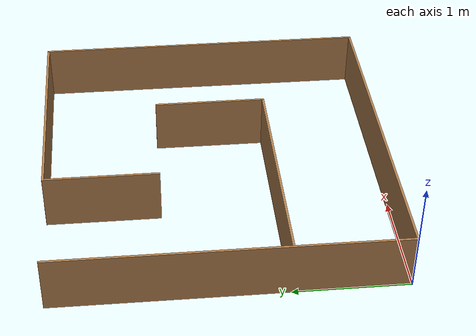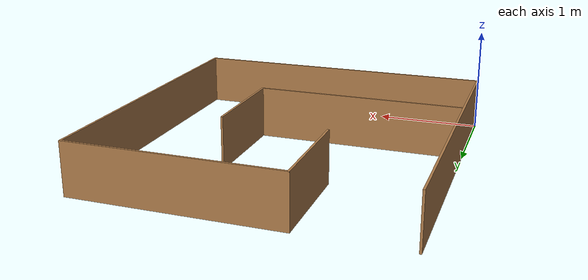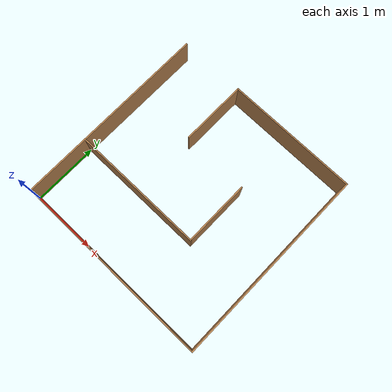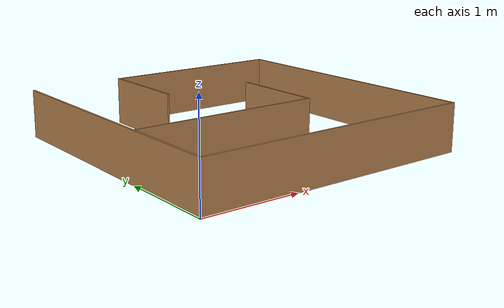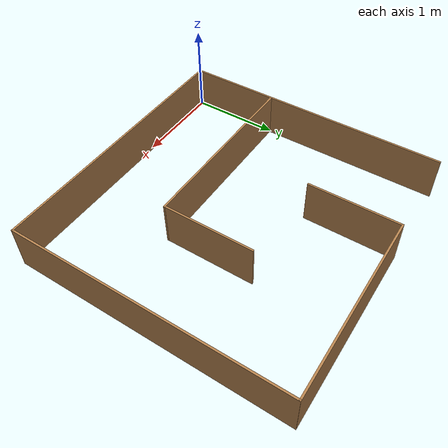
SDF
<?xml version='1.0'?>
<sdf version='1.6'>
  <model name='circuit_25.1'>
    <pose frame=''>1.49924 1.49756 0 0 -0 0</pose>
    <link name='Wall_12'>
      <collision name='Wall_12_Collision'>
        <geometry>
          <box>
            <size>3 0.02 0.5</size>
          </box>
        </geometry>
        <pose frame=''>0 0 0.25 0 -0 0</pose>
      </collision>
      <visual name='Wall_12_Visual'>
        <pose frame=''>0 0 0.25 0 -0 0</pose>
        <geometry>
          <box>
            <size>3 0.02 0.5</size>
          </box>
        </geometry>
        <material>
          <script>
            <uri>file://media/materials/scripts/gazebo.material</uri>
            <name>Gazebo/Wood</name>
          </script>
          <ambient>1 1 1 1</ambient>
        </material>
        <meta>
          <layer>0</layer>
        </meta>
      </visual>
      <pose frame=''>0 -1.49069 0 0 -0 0</pose>
    </link>
    <link name='Wall_14'>
      <collision name='Wall_14_Collision'>
        <geometry>
          <box>
            <size>3 0.02 0.5</size>
          </box>
        </geometry>
        <pose frame=''>0 0 0.25 0 -0 0</pose>
      </collision>
      <visual name='Wall_14_Visual'>
        <pose frame=''>0 0 0.25 0 -0 0</pose>
        <geometry>
          <box>
            <size>3 0.02 0.5</size>
          </box>
        </geometry>
        <material>
          <script>
            <uri>file://media/materials/scripts/gazebo.material</uri>
            <name>Gazebo/Wood</name>
          </script>
          <ambient>1 1 1 1</ambient>
        </material>
        <meta>
          <layer>0</layer>
        </meta>
      </visual>
      <pose frame=''>-1.4903 -0.000677 0 0 -0 1.5708</pose>
    </link>
    <link name='Wall_16'>
      <collision name='Wall_16_Collision'>
        <geometry>
          <box>
            <size>3 0.02 0.5</size>
          </box>
        </geometry>
        <pose frame=''>0 0 0.25 0 -0 0</pose>
      </collision>
      <visual name='Wall_16_Visual'>
        <pose frame=''>0 0 0.25 0 -0 0</pose>
        <geometry>
          <box>
            <size>3 0.02 0.5</size>
          </box>
        </geometry>
        <material>
          <script>
            <uri>file://media/materials/scripts/gazebo.material</uri>
            <name>Gazebo/Wood</name>
          </script>
          <ambient>1 1 1 1</ambient>
        </material>
        <meta>
          <layer>0</layer>
        </meta>
      </visual>
      <pose frame=''>1.4903 -0.000565 0 0 -0 1.5708</pose>
    </link>
    <link name='Wall_18'>
      <collision name='Wall_18_Collision'>
        <geometry>
          <box>
            <size>2 0.02 0.5</size>
          </box>
        </geometry>
        <pose frame=''>0 0 0.25 0 -0 0</pose>
      </collision>
      <visual name='Wall_18_Visual'>
        <pose frame=''>0 0 0.25 0 -0 0</pose>
        <geometry>
          <box>
            <size>2 0.02 0.5</size>
          </box>
        </geometry>
        <material>
          <script>
            <uri>file://media/materials/scripts/gazebo.material</uri>
            <name>Gazebo/Wood</name>
          </script>
          <ambient>1 1 1 1</ambient>
        </material>
        <meta>
          <layer>0</layer>
        </meta>
      </visual>
      <pose frame=''>0.500076 1.49069 0 0 -0 3.14159</pose>
    </link>
    <link name='Wall_20'>
      <collision name='Wall_20_Collision'>
        <geometry>
          <box>
            <size>2 0.02 0.5</size>
          </box>
        </geometry>
        <pose frame=''>0 0 0.25 0 -0 0</pose>
      </collision>
      <visual name='Wall_20_Visual'>
        <pose frame=''>0 0 0.25 0 -0 0</pose>
        <geometry>
          <box>
            <size>2 0.02 0.5</size>
          </box>
        </geometry>
        <material>
          <script>
            <uri>file://media/materials/scripts/gazebo.material</uri>
            <name>Gazebo/Wood</name>
          </script>
          <ambient>1 1 1 1</ambient>
        </material>
        <meta>
          <layer>0</layer>
        </meta>
      </visual>
      <pose frame=''>-0.483514 -0.500636 0 0 -0 0</pose>
    </link>
    <link name='Wall_22'>
      <collision name='Wall_22_Collision'>
        <geometry>
          <box>
            <size>1 0.02 0.5</size>
          </box>
        </geometry>
        <pose frame=''>0 0 0.25 0 -0 0</pose>
      </collision>
      <visual name='Wall_22_Visual'>
        <pose frame=''>0 0 0.25 0 -0 0</pose>
        <geometry>
          <box>
            <size>1 0.02 0.5</size>
          </box>
        </geometry>
        <material>
          <script>
            <uri>file://media/materials/scripts/gazebo.material</uri>
            <name>Gazebo/Wood</name>
          </script>
          <ambient>1 1 1 1</ambient>
        </material>
        <meta>
          <layer>0</layer>
        </meta>
      </visual>
      <pose frame=''>0.506232 -0.009744 0 0 -0 -1.5708</pose>
    </link>
    <link name='Wall_24'>
      <collision name='Wall_24_Collision'>
        <geometry>
          <box>
            <size>1 0.02 0.5</size>
          </box>
        </geometry>
        <pose frame=''>0 0 0.25 0 -0 0</pose>
      </collision>
      <visual name='Wall_24_Visual'>
        <pose frame=''>0 0 0.25 0 -0 0</pose>
        <geometry>
          <box>
            <size>1 0.02 0.5</size>
          </box>
        </geometry>
        <material>
          <script>
            <uri>file://media/materials/scripts/gazebo.material</uri>
            <name>Gazebo/Wood</name>
          </script>
          <ambient>1 1 1 1</ambient>
        </material>
        <meta>
          <layer>0</layer>
        </meta>
      </visual>
      <pose frame=''>-0.490608 1.00024 0 0 -0 -1.5708</pose>
    </link>
    <static>1</static>
  </model>
</sdf>
